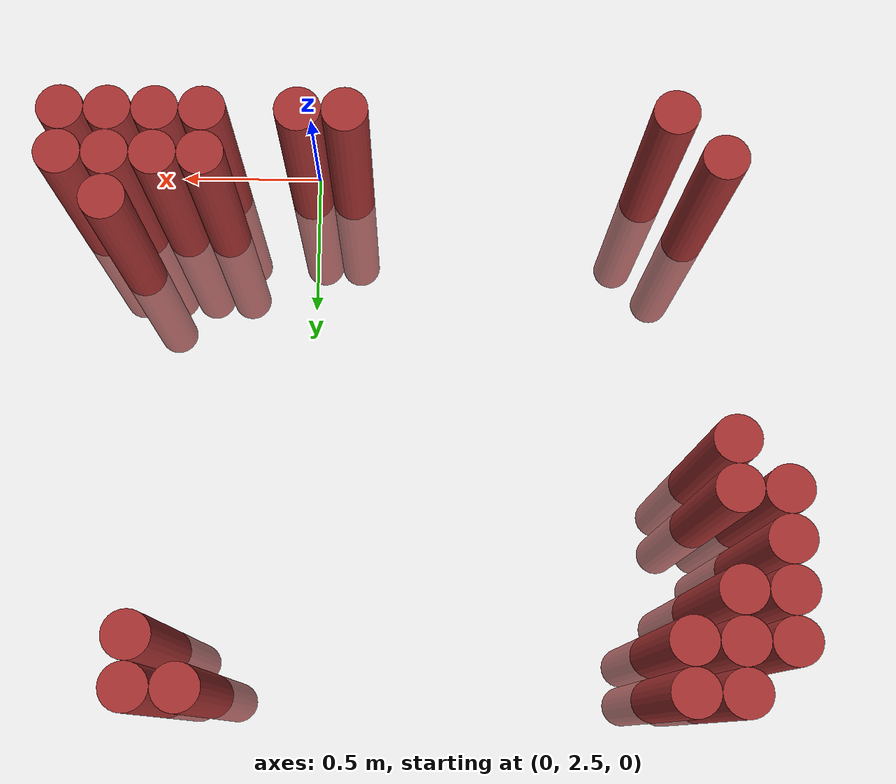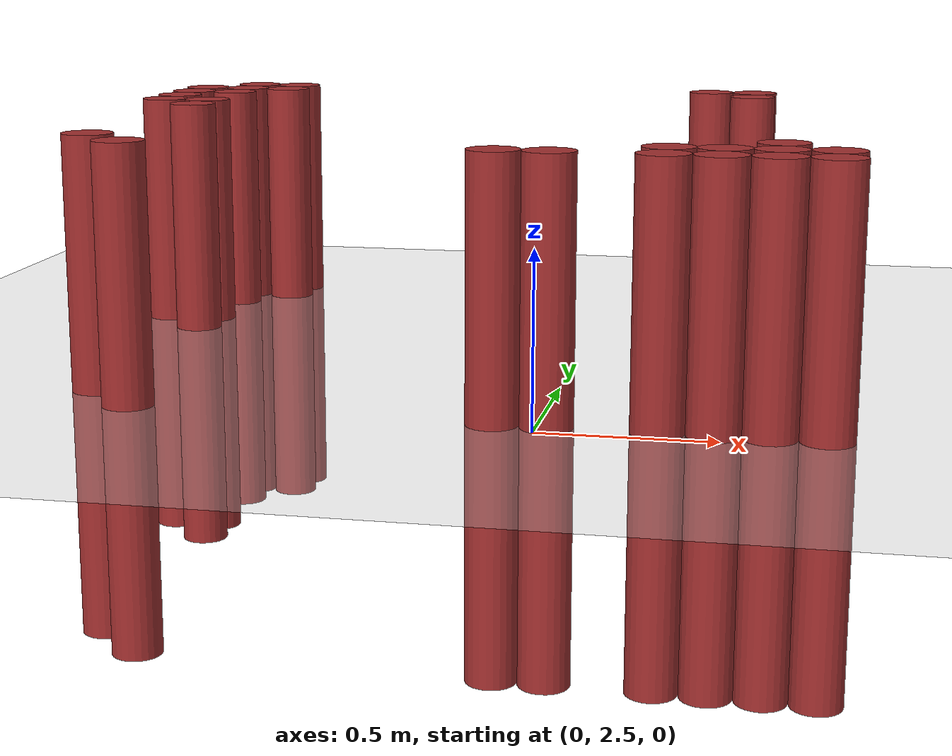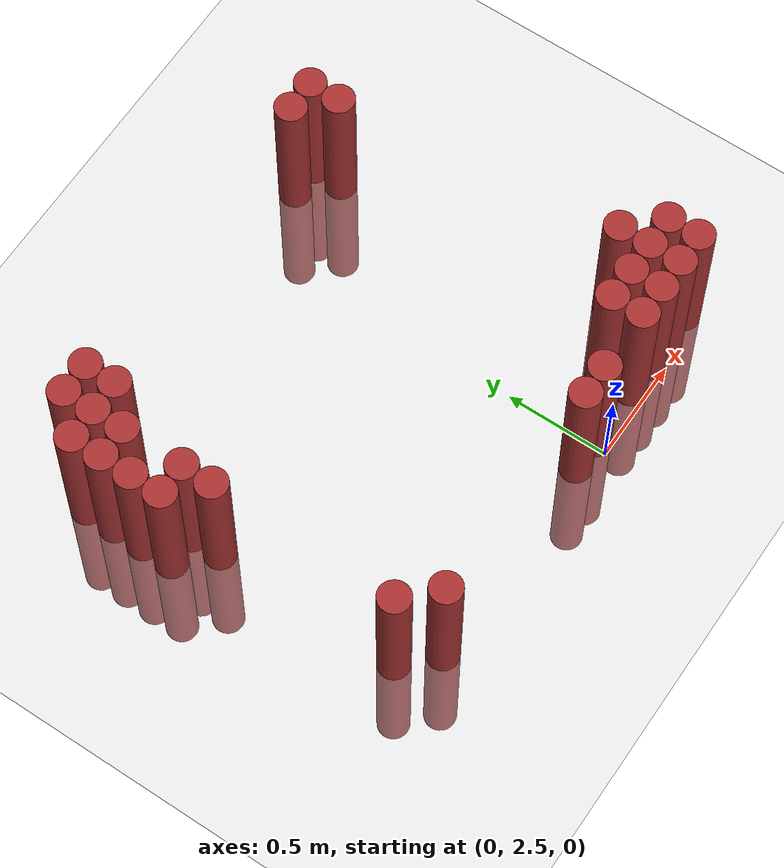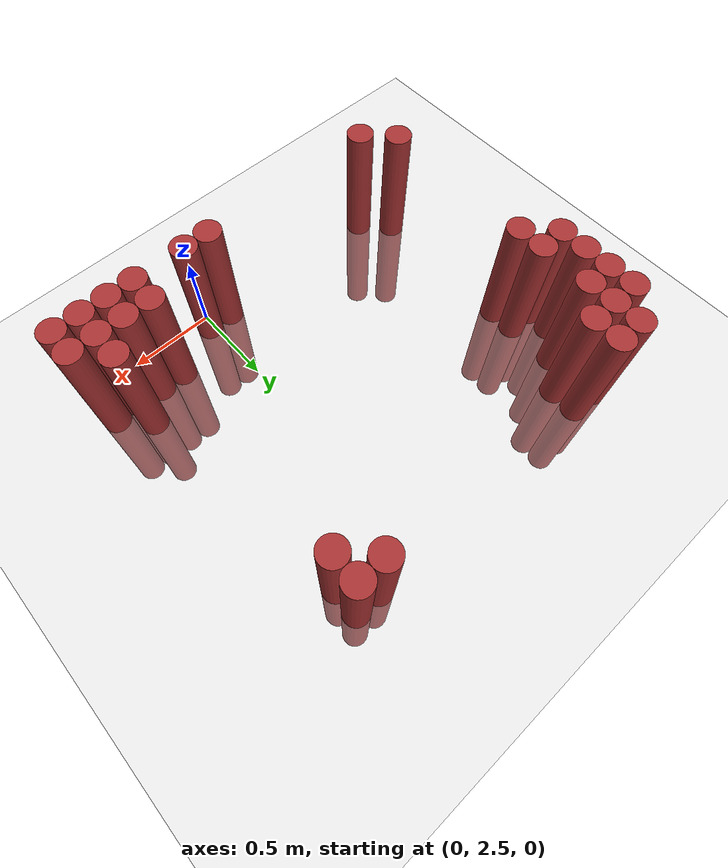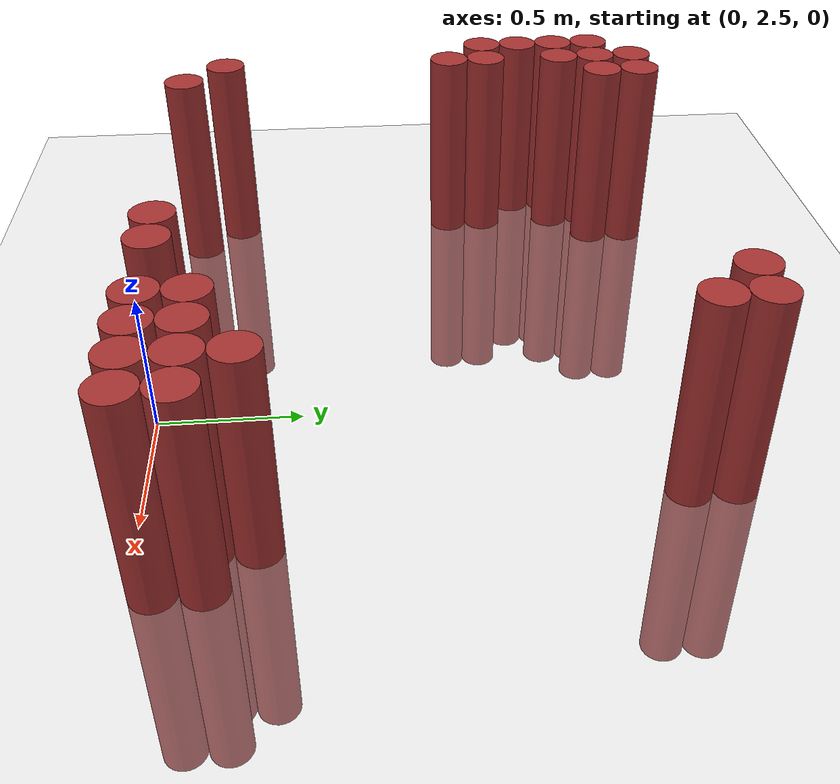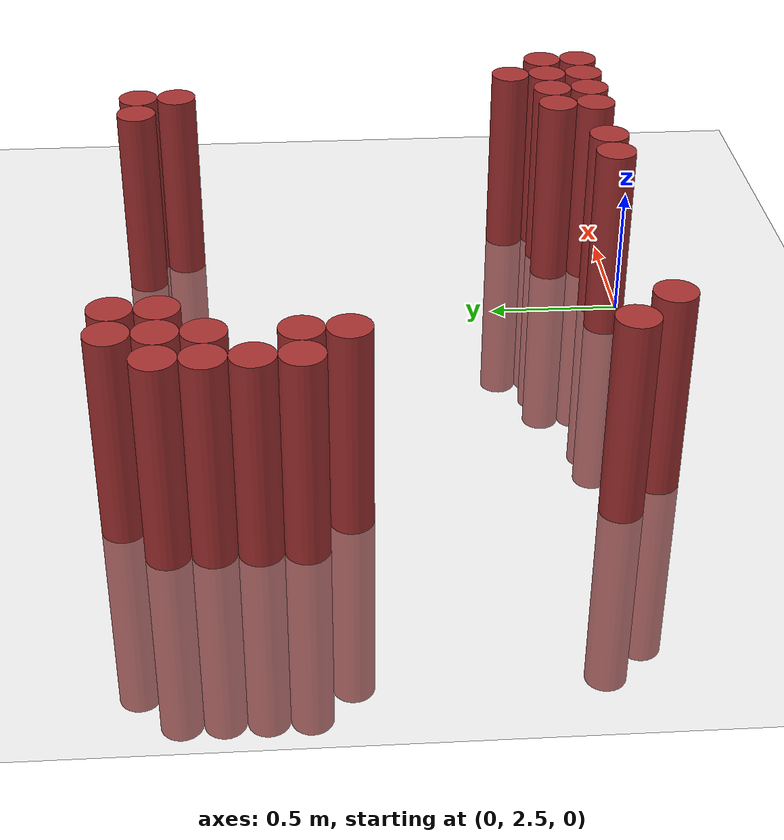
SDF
<sdf version="1.6">
 <world name="default">
  <model name="ground_plane">
   <static>1</static>
   <link name="link">
    <collision name="collision">
     <geometry><plane><normal>0 0 1</normal><size>100 100</size></plane></geometry>
     <surface><friction><ode><mu>100</mu><mu2>50</mu2></ode></friction></surface>
    </collision>
    <visual name="visual">
     <cast_shadows>0</cast_shadows>
     <geometry><plane><normal>0 0 1</normal><size>100 100</size></plane></geometry>
     <material>
      <script><uri>file://media/materials/scripts/gazebo.material</uri><name>Gazebo/Grey</name></script>
     </material>
    </visual>
   </link>
  </model>
  <model name="unit_cylinder_152">
   <static>1</static>
   <pose>-1.475000 3.775000 0.000000 0.000000 0.000000 0.000000</pose>
   <link name="link">
    <inertial>
     <mass>1</mass>
     <inertia><ixx>0.145833</ixx><ixy>0</ixy><ixz>0</ixz><iyy>0.145833</iyy><iyz>0</iyz><izz>0.125</izz></inertia>
    </inertial>
    <collision name="collision">
     <geometry><cylinder><radius>0.075000</radius><length>1.5</length></cylinder></geometry>
    </collision>
    <visual name="visual">
     <geometry><cylinder><radius>0.075000</radius><length>1.5</length></cylinder></geometry>
     <material>
      <ambient>0.648000 0.192000 0.192000 1</ambient>
      <diffuse>0.648000 0.192000 0.192000 1</diffuse>
     </material>
     <material>
      <script><name>Gazebo/Grey</name><uri>file://media/materials/scripts/gazebo.material</uri></script>
     </material>
    </visual>
   </link>
  </model>
  <model name="unit_cylinder_153">
   <static>1</static>
   <pose>-1.475000 3.925000 0.000000 0.000000 0.000000 0.000000</pose>
   <link name="link">
    <inertial>
     <mass>1</mass>
     <inertia><ixx>0.145833</ixx><ixy>0</ixy><ixz>0</ixz><iyy>0.145833</iyy><iyz>0</iyz><izz>0.125</izz></inertia>
    </inertial>
    <collision name="collision">
     <geometry><cylinder><radius>0.075000</radius><length>1.5</length></cylinder></geometry>
    </collision>
    <visual name="visual">
     <geometry><cylinder><radius>0.075000</radius><length>1.5</length></cylinder></geometry>
     <material>
      <ambient>0.648000 0.192000 0.192000 1</ambient>
      <diffuse>0.648000 0.192000 0.192000 1</diffuse>
     </material>
     <material>
      <script><name>Gazebo/Grey</name><uri>file://media/materials/scripts/gazebo.material</uri></script>
     </material>
    </visual>
   </link>
  </model>
  <model name="unit_cylinder_154">
   <static>1</static>
   <pose>-1.475000 4.075000 0.000000 0.000000 0.000000 0.000000</pose>
   <link name="link">
    <inertial>
     <mass>1</mass>
     <inertia><ixx>0.145833</ixx><ixy>0</ixy><ixz>0</ixz><iyy>0.145833</iyy><iyz>0</iyz><izz>0.125</izz></inertia>
    </inertial>
    <collision name="collision">
     <geometry><cylinder><radius>0.075000</radius><length>1.5</length></cylinder></geometry>
    </collision>
    <visual name="visual">
     <geometry><cylinder><radius>0.075000</radius><length>1.5</length></cylinder></geometry>
     <material>
      <ambient>0.648000 0.192000 0.192000 1</ambient>
      <diffuse>0.648000 0.192000 0.192000 1</diffuse>
     </material>
     <material>
      <script><name>Gazebo/Grey</name><uri>file://media/materials/scripts/gazebo.material</uri></script>
     </material>
    </visual>
   </link>
  </model>
  <model name="unit_cylinder_155">
   <static>1</static>
   <pose>-1.475000 4.225000 0.000000 0.000000 0.000000 0.000000</pose>
   <link name="link">
    <inertial>
     <mass>1</mass>
     <inertia><ixx>0.145833</ixx><ixy>0</ixy><ixz>0</ixz><iyy>0.145833</iyy><iyz>0</iyz><izz>0.125</izz></inertia>
    </inertial>
    <collision name="collision">
     <geometry><cylinder><radius>0.075000</radius><length>1.5</length></cylinder></geometry>
    </collision>
    <visual name="visual">
     <geometry><cylinder><radius>0.075000</radius><length>1.5</length></cylinder></geometry>
     <material>
      <ambient>0.648000 0.192000 0.192000 1</ambient>
      <diffuse>0.648000 0.192000 0.192000 1</diffuse>
     </material>
     <material>
      <script><name>Gazebo/Grey</name><uri>file://media/materials/scripts/gazebo.material</uri></script>
     </material>
    </visual>
   </link>
  </model>
  <model name="unit_cylinder_158">
   <static>1</static>
   <pose>-1.325000 2.725000 0.000000 0.000000 0.000000 0.000000</pose>
   <link name="link">
    <inertial>
     <mass>1</mass>
     <inertia><ixx>0.145833</ixx><ixy>0</ixy><ixz>0</ixz><iyy>0.145833</iyy><iyz>0</iyz><izz>0.125</izz></inertia>
    </inertial>
    <collision name="collision">
     <geometry><cylinder><radius>0.075000</radius><length>1.5</length></cylinder></geometry>
    </collision>
    <visual name="visual">
     <geometry><cylinder><radius>0.075000</radius><length>1.5</length></cylinder></geometry>
     <material>
      <ambient>0.648000 0.192000 0.192000 1</ambient>
      <diffuse>0.648000 0.192000 0.192000 1</diffuse>
     </material>
     <material>
      <script><name>Gazebo/Grey</name><uri>file://media/materials/scripts/gazebo.material</uri></script>
     </material>
    </visual>
   </link>
  </model>
  <model name="unit_cylinder_159">
   <static>1</static>
   <pose>-1.325000 3.625000 0.000000 0.000000 0.000000 0.000000</pose>
   <link name="link">
    <inertial>
     <mass>1</mass>
     <inertia><ixx>0.145833</ixx><ixy>0</ixy><ixz>0</ixz><iyy>0.145833</iyy><iyz>0</iyz><izz>0.125</izz></inertia>
    </inertial>
    <collision name="collision">
     <geometry><cylinder><radius>0.075000</radius><length>1.5</length></cylinder></geometry>
    </collision>
    <visual name="visual">
     <geometry><cylinder><radius>0.075000</radius><length>1.5</length></cylinder></geometry>
     <material>
      <ambient>0.648000 0.192000 0.192000 1</ambient>
      <diffuse>0.648000 0.192000 0.192000 1</diffuse>
     </material>
     <material>
      <script><name>Gazebo/Grey</name><uri>file://media/materials/scripts/gazebo.material</uri></script>
     </material>
    </visual>
   </link>
  </model>
  <model name="unit_cylinder_160">
   <static>1</static>
   <pose>-1.325000 3.775000 0.000000 0.000000 0.000000 0.000000</pose>
   <link name="link">
    <inertial>
     <mass>1</mass>
     <inertia><ixx>0.145833</ixx><ixy>0</ixy><ixz>0</ixz><iyy>0.145833</iyy><iyz>0</iyz><izz>0.125</izz></inertia>
    </inertial>
    <collision name="collision">
     <geometry><cylinder><radius>0.075000</radius><length>1.5</length></cylinder></geometry>
    </collision>
    <visual name="visual">
     <geometry><cylinder><radius>0.075000</radius><length>1.5</length></cylinder></geometry>
     <material>
      <ambient>0.648000 0.192000 0.192000 1</ambient>
      <diffuse>0.648000 0.192000 0.192000 1</diffuse>
     </material>
     <material>
      <script><name>Gazebo/Grey</name><uri>file://media/materials/scripts/gazebo.material</uri></script>
     </material>
    </visual>
   </link>
  </model>
  <model name="unit_cylinder_161">
   <static>1</static>
   <pose>-1.325000 4.075000 0.000000 0.000000 0.000000 0.000000</pose>
   <link name="link">
    <inertial>
     <mass>1</mass>
     <inertia><ixx>0.145833</ixx><ixy>0</ixy><ixz>0</ixz><iyy>0.145833</iyy><iyz>0</iyz><izz>0.125</izz></inertia>
    </inertial>
    <collision name="collision">
     <geometry><cylinder><radius>0.075000</radius><length>1.5</length></cylinder></geometry>
    </collision>
    <visual name="visual">
     <geometry><cylinder><radius>0.075000</radius><length>1.5</length></cylinder></geometry>
     <material>
      <ambient>0.648000 0.192000 0.192000 1</ambient>
      <diffuse>0.648000 0.192000 0.192000 1</diffuse>
     </material>
     <material>
      <script><name>Gazebo/Grey</name><uri>file://media/materials/scripts/gazebo.material</uri></script>
     </material>
    </visual>
   </link>
  </model>
  <model name="unit_cylinder_162">
   <static>1</static>
   <pose>-1.325000 4.225000 0.000000 0.000000 0.000000 0.000000</pose>
   <link name="link">
    <inertial>
     <mass>1</mass>
     <inertia><ixx>0.145833</ixx><ixy>0</ixy><ixz>0</ixz><iyy>0.145833</iyy><iyz>0</iyz><izz>0.125</izz></inertia>
    </inertial>
    <collision name="collision">
     <geometry><cylinder><radius>0.075000</radius><length>1.5</length></cylinder></geometry>
    </collision>
    <visual name="visual">
     <geometry><cylinder><radius>0.075000</radius><length>1.5</length></cylinder></geometry>
     <material>
      <ambient>0.648000 0.192000 0.192000 1</ambient>
      <diffuse>0.648000 0.192000 0.192000 1</diffuse>
     </material>
     <material>
      <script><name>Gazebo/Grey</name><uri>file://media/materials/scripts/gazebo.material</uri></script>
     </material>
    </visual>
   </link>
  </model>
  <model name="unit_cylinder_163">
   <static>1</static>
   <pose>-1.325000 4.375000 0.000000 0.000000 0.000000 0.000000</pose>
   <link name="link">
    <inertial>
     <mass>1</mass>
     <inertia><ixx>0.145833</ixx><ixy>0</ixy><ixz>0</ixz><iyy>0.145833</iyy><iyz>0</iyz><izz>0.125</izz></inertia>
    </inertial>
    <collision name="collision">
     <geometry><cylinder><radius>0.075000</radius><length>1.5</length></cylinder></geometry>
    </collision>
    <visual name="visual">
     <geometry><cylinder><radius>0.075000</radius><length>1.5</length></cylinder></geometry>
     <material>
      <ambient>0.648000 0.192000 0.192000 1</ambient>
      <diffuse>0.648000 0.192000 0.192000 1</diffuse>
     </material>
     <material>
      <script><name>Gazebo/Grey</name><uri>file://media/materials/scripts/gazebo.material</uri></script>
     </material>
    </visual>
   </link>
  </model>
  <model name="unit_cylinder_168">
   <static>1</static>
   <pose>-1.175000 2.575000 0.000000 0.000000 0.000000 0.000000</pose>
   <link name="link">
    <inertial>
     <mass>1</mass>
     <inertia><ixx>0.145833</ixx><ixy>0</ixy><ixz>0</ixz><iyy>0.145833</iyy><iyz>0</iyz><izz>0.125</izz></inertia>
    </inertial>
    <collision name="collision">
     <geometry><cylinder><radius>0.075000</radius><length>1.5</length></cylinder></geometry>
    </collision>
    <visual name="visual">
     <geometry><cylinder><radius>0.075000</radius><length>1.5</length></cylinder></geometry>
     <material>
      <ambient>0.648000 0.192000 0.192000 1</ambient>
      <diffuse>0.648000 0.192000 0.192000 1</diffuse>
     </material>
     <material>
      <script><name>Gazebo/Grey</name><uri>file://media/materials/scripts/gazebo.material</uri></script>
     </material>
    </visual>
   </link>
  </model>
  <model name="unit_cylinder_169">
   <static>1</static>
   <pose>-1.175000 4.225000 0.000000 0.000000 0.000000 0.000000</pose>
   <link name="link">
    <inertial>
     <mass>1</mass>
     <inertia><ixx>0.145833</ixx><ixy>0</ixy><ixz>0</ixz><iyy>0.145833</iyy><iyz>0</iyz><izz>0.125</izz></inertia>
    </inertial>
    <collision name="collision">
     <geometry><cylinder><radius>0.075000</radius><length>1.5</length></cylinder></geometry>
    </collision>
    <visual name="visual">
     <geometry><cylinder><radius>0.075000</radius><length>1.5</length></cylinder></geometry>
     <material>
      <ambient>0.648000 0.192000 0.192000 1</ambient>
      <diffuse>0.648000 0.192000 0.192000 1</diffuse>
     </material>
     <material>
      <script><name>Gazebo/Grey</name><uri>file://media/materials/scripts/gazebo.material</uri></script>
     </material>
    </visual>
   </link>
  </model>
  <model name="unit_cylinder_170">
   <static>1</static>
   <pose>-1.175000 4.375000 0.000000 0.000000 0.000000 0.000000</pose>
   <link name="link">
    <inertial>
     <mass>1</mass>
     <inertia><ixx>0.145833</ixx><ixy>0</ixy><ixz>0</ixz><iyy>0.145833</iyy><iyz>0</iyz><izz>0.125</izz></inertia>
    </inertial>
    <collision name="collision">
     <geometry><cylinder><radius>0.075000</radius><length>1.5</length></cylinder></geometry>
    </collision>
    <visual name="visual">
     <geometry><cylinder><radius>0.075000</radius><length>1.5</length></cylinder></geometry>
     <material>
      <ambient>0.648000 0.192000 0.192000 1</ambient>
      <diffuse>0.648000 0.192000 0.192000 1</diffuse>
     </material>
     <material>
      <script><name>Gazebo/Grey</name><uri>file://media/materials/scripts/gazebo.material</uri></script>
     </material>
    </visual>
   </link>
  </model>
  <model name="unit_cylinder_200">
   <static>1</static>
   <pose>-0.125000 2.575000 0.000000 0.000000 0.000000 0.000000</pose>
   <link name="link">
    <inertial>
     <mass>1</mass>
     <inertia><ixx>0.145833</ixx><ixy>0</ixy><ixz>0</ixz><iyy>0.145833</iyy><iyz>0</iyz><izz>0.125</izz></inertia>
    </inertial>
    <collision name="collision">
     <geometry><cylinder><radius>0.075000</radius><length>1.5</length></cylinder></geometry>
    </collision>
    <visual name="visual">
     <geometry><cylinder><radius>0.075000</radius><length>1.5</length></cylinder></geometry>
     <material>
      <ambient>0.648000 0.192000 0.192000 1</ambient>
      <diffuse>0.648000 0.192000 0.192000 1</diffuse>
     </material>
     <material>
      <script><name>Gazebo/Grey</name><uri>file://media/materials/scripts/gazebo.material</uri></script>
     </material>
    </visual>
   </link>
  </model>
  <model name="unit_cylinder_202">
   <static>1</static>
   <pose>0.025000 2.575000 0.000000 0.000000 0.000000 0.000000</pose>
   <link name="link">
    <inertial>
     <mass>1</mass>
     <inertia><ixx>0.145833</ixx><ixy>0</ixy><ixz>0</ixz><iyy>0.145833</iyy><iyz>0</iyz><izz>0.125</izz></inertia>
    </inertial>
    <collision name="collision">
     <geometry><cylinder><radius>0.075000</radius><length>1.5</length></cylinder></geometry>
    </collision>
    <visual name="visual">
     <geometry><cylinder><radius>0.075000</radius><length>1.5</length></cylinder></geometry>
     <material>
      <ambient>0.648000 0.192000 0.192000 1</ambient>
      <diffuse>0.648000 0.192000 0.192000 1</diffuse>
     </material>
     <material>
      <script><name>Gazebo/Grey</name><uri>file://media/materials/scripts/gazebo.material</uri></script>
     </material>
    </visual>
   </link>
  </model>
  <model name="unit_cylinder_205">
   <static>1</static>
   <pose>0.325000 2.575000 0.000000 0.000000 0.000000 0.000000</pose>
   <link name="link">
    <inertial>
     <mass>1</mass>
     <inertia><ixx>0.145833</ixx><ixy>0</ixy><ixz>0</ixz><iyy>0.145833</iyy><iyz>0</iyz><izz>0.125</izz></inertia>
    </inertial>
    <collision name="collision">
     <geometry><cylinder><radius>0.075000</radius><length>1.5</length></cylinder></geometry>
    </collision>
    <visual name="visual">
     <geometry><cylinder><radius>0.075000</radius><length>1.5</length></cylinder></geometry>
     <material>
      <ambient>0.648000 0.192000 0.192000 1</ambient>
      <diffuse>0.648000 0.192000 0.192000 1</diffuse>
     </material>
     <material>
      <script><name>Gazebo/Grey</name><uri>file://media/materials/scripts/gazebo.material</uri></script>
     </material>
    </visual>
   </link>
  </model>
  <model name="unit_cylinder_206">
   <static>1</static>
   <pose>0.325000 2.725000 0.000000 0.000000 0.000000 0.000000</pose>
   <link name="link">
    <inertial>
     <mass>1</mass>
     <inertia><ixx>0.145833</ixx><ixy>0</ixy><ixz>0</ixz><iyy>0.145833</iyy><iyz>0</iyz><izz>0.125</izz></inertia>
    </inertial>
    <collision name="collision">
     <geometry><cylinder><radius>0.075000</radius><length>1.5</length></cylinder></geometry>
    </collision>
    <visual name="visual">
     <geometry><cylinder><radius>0.075000</radius><length>1.5</length></cylinder></geometry>
     <material>
      <ambient>0.648000 0.192000 0.192000 1</ambient>
      <diffuse>0.648000 0.192000 0.192000 1</diffuse>
     </material>
     <material>
      <script><name>Gazebo/Grey</name><uri>file://media/materials/scripts/gazebo.material</uri></script>
     </material>
    </visual>
   </link>
  </model>
  <model name="unit_cylinder_207">
   <static>1</static>
   <pose>0.325000 4.375000 0.000000 0.000000 0.000000 0.000000</pose>
   <link name="link">
    <inertial>
     <mass>1</mass>
     <inertia><ixx>0.145833</ixx><ixy>0</ixy><ixz>0</ixz><iyy>0.145833</iyy><iyz>0</iyz><izz>0.125</izz></inertia>
    </inertial>
    <collision name="collision">
     <geometry><cylinder><radius>0.075000</radius><length>1.5</length></cylinder></geometry>
    </collision>
    <visual name="visual">
     <geometry><cylinder><radius>0.075000</radius><length>1.5</length></cylinder></geometry>
     <material>
      <ambient>0.648000 0.192000 0.192000 1</ambient>
      <diffuse>0.648000 0.192000 0.192000 1</diffuse>
     </material>
     <material>
      <script><name>Gazebo/Grey</name><uri>file://media/materials/scripts/gazebo.material</uri></script>
     </material>
    </visual>
   </link>
  </model>
  <model name="unit_cylinder_212">
   <static>1</static>
   <pose>0.475000 2.575000 0.000000 0.000000 0.000000 0.000000</pose>
   <link name="link">
    <inertial>
     <mass>1</mass>
     <inertia><ixx>0.145833</ixx><ixy>0</ixy><ixz>0</ixz><iyy>0.145833</iyy><iyz>0</iyz><izz>0.125</izz></inertia>
    </inertial>
    <collision name="collision">
     <geometry><cylinder><radius>0.075000</radius><length>1.5</length></cylinder></geometry>
    </collision>
    <visual name="visual">
     <geometry><cylinder><radius>0.075000</radius><length>1.5</length></cylinder></geometry>
     <material>
      <ambient>0.648000 0.192000 0.192000 1</ambient>
      <diffuse>0.648000 0.192000 0.192000 1</diffuse>
     </material>
     <material>
      <script><name>Gazebo/Grey</name><uri>file://media/materials/scripts/gazebo.material</uri></script>
     </material>
    </visual>
   </link>
  </model>
  <model name="unit_cylinder_213">
   <static>1</static>
   <pose>0.475000 2.725000 0.000000 0.000000 0.000000 0.000000</pose>
   <link name="link">
    <inertial>
     <mass>1</mass>
     <inertia><ixx>0.145833</ixx><ixy>0</ixy><ixz>0</ixz><iyy>0.145833</iyy><iyz>0</iyz><izz>0.125</izz></inertia>
    </inertial>
    <collision name="collision">
     <geometry><cylinder><radius>0.075000</radius><length>1.5</length></cylinder></geometry>
    </collision>
    <visual name="visual">
     <geometry><cylinder><radius>0.075000</radius><length>1.5</length></cylinder></geometry>
     <material>
      <ambient>0.648000 0.192000 0.192000 1</ambient>
      <diffuse>0.648000 0.192000 0.192000 1</diffuse>
     </material>
     <material>
      <script><name>Gazebo/Grey</name><uri>file://media/materials/scripts/gazebo.material</uri></script>
     </material>
    </visual>
   </link>
  </model>
  <model name="unit_cylinder_214">
   <static>1</static>
   <pose>0.475000 4.225000 0.000000 0.000000 0.000000 0.000000</pose>
   <link name="link">
    <inertial>
     <mass>1</mass>
     <inertia><ixx>0.145833</ixx><ixy>0</ixy><ixz>0</ixz><iyy>0.145833</iyy><iyz>0</iyz><izz>0.125</izz></inertia>
    </inertial>
    <collision name="collision">
     <geometry><cylinder><radius>0.075000</radius><length>1.5</length></cylinder></geometry>
    </collision>
    <visual name="visual">
     <geometry><cylinder><radius>0.075000</radius><length>1.5</length></cylinder></geometry>
     <material>
      <ambient>0.648000 0.192000 0.192000 1</ambient>
      <diffuse>0.648000 0.192000 0.192000 1</diffuse>
     </material>
     <material>
      <script><name>Gazebo/Grey</name><uri>file://media/materials/scripts/gazebo.material</uri></script>
     </material>
    </visual>
   </link>
  </model>
  <model name="unit_cylinder_215">
   <static>1</static>
   <pose>0.475000 4.375000 0.000000 0.000000 0.000000 0.000000</pose>
   <link name="link">
    <inertial>
     <mass>1</mass>
     <inertia><ixx>0.145833</ixx><ixy>0</ixy><ixz>0</ixz><iyy>0.145833</iyy><iyz>0</iyz><izz>0.125</izz></inertia>
    </inertial>
    <collision name="collision">
     <geometry><cylinder><radius>0.075000</radius><length>1.5</length></cylinder></geometry>
    </collision>
    <visual name="visual">
     <geometry><cylinder><radius>0.075000</radius><length>1.5</length></cylinder></geometry>
     <material>
      <ambient>0.648000 0.192000 0.192000 1</ambient>
      <diffuse>0.648000 0.192000 0.192000 1</diffuse>
     </material>
     <material>
      <script><name>Gazebo/Grey</name><uri>file://media/materials/scripts/gazebo.material</uri></script>
     </material>
    </visual>
   </link>
  </model>
  <model name="unit_cylinder_218">
   <static>1</static>
   <pose>0.625000 2.575000 0.000000 0.000000 0.000000 0.000000</pose>
   <link name="link">
    <inertial>
     <mass>1</mass>
     <inertia><ixx>0.145833</ixx><ixy>0</ixy><ixz>0</ixz><iyy>0.145833</iyy><iyz>0</iyz><izz>0.125</izz></inertia>
    </inertial>
    <collision name="collision">
     <geometry><cylinder><radius>0.075000</radius><length>1.5</length></cylinder></geometry>
    </collision>
    <visual name="visual">
     <geometry><cylinder><radius>0.075000</radius><length>1.5</length></cylinder></geometry>
     <material>
      <ambient>0.648000 0.192000 0.192000 1</ambient>
      <diffuse>0.648000 0.192000 0.192000 1</diffuse>
     </material>
     <material>
      <script><name>Gazebo/Grey</name><uri>file://media/materials/scripts/gazebo.material</uri></script>
     </material>
    </visual>
   </link>
  </model>
  <model name="unit_cylinder_219">
   <static>1</static>
   <pose>0.625000 2.725000 0.000000 0.000000 0.000000 0.000000</pose>
   <link name="link">
    <inertial>
     <mass>1</mass>
     <inertia><ixx>0.145833</ixx><ixy>0</ixy><ixz>0</ixz><iyy>0.145833</iyy><iyz>0</iyz><izz>0.125</izz></inertia>
    </inertial>
    <collision name="collision">
     <geometry><cylinder><radius>0.075000</radius><length>1.5</length></cylinder></geometry>
    </collision>
    <visual name="visual">
     <geometry><cylinder><radius>0.075000</radius><length>1.5</length></cylinder></geometry>
     <material>
      <ambient>0.648000 0.192000 0.192000 1</ambient>
      <diffuse>0.648000 0.192000 0.192000 1</diffuse>
     </material>
     <material>
      <script><name>Gazebo/Grey</name><uri>file://media/materials/scripts/gazebo.material</uri></script>
     </material>
    </visual>
   </link>
  </model>
  <model name="unit_cylinder_220">
   <static>1</static>
   <pose>0.625000 2.875000 0.000000 0.000000 0.000000 0.000000</pose>
   <link name="link">
    <inertial>
     <mass>1</mass>
     <inertia><ixx>0.145833</ixx><ixy>0</ixy><ixz>0</ixz><iyy>0.145833</iyy><iyz>0</iyz><izz>0.125</izz></inertia>
    </inertial>
    <collision name="collision">
     <geometry><cylinder><radius>0.075000</radius><length>1.5</length></cylinder></geometry>
    </collision>
    <visual name="visual">
     <geometry><cylinder><radius>0.075000</radius><length>1.5</length></cylinder></geometry>
     <material>
      <ambient>0.648000 0.192000 0.192000 1</ambient>
      <diffuse>0.648000 0.192000 0.192000 1</diffuse>
     </material>
     <material>
      <script><name>Gazebo/Grey</name><uri>file://media/materials/scripts/gazebo.material</uri></script>
     </material>
    </visual>
   </link>
  </model>
  <model name="unit_cylinder_221">
   <static>1</static>
   <pose>0.775000 2.575000 0.000000 0.000000 0.000000 0.000000</pose>
   <link name="link">
    <inertial>
     <mass>1</mass>
     <inertia><ixx>0.145833</ixx><ixy>0</ixy><ixz>0</ixz><iyy>0.145833</iyy><iyz>0</iyz><izz>0.125</izz></inertia>
    </inertial>
    <collision name="collision">
     <geometry><cylinder><radius>0.075000</radius><length>1.5</length></cylinder></geometry>
    </collision>
    <visual name="visual">
     <geometry><cylinder><radius>0.075000</radius><length>1.5</length></cylinder></geometry>
     <material>
      <ambient>0.648000 0.192000 0.192000 1</ambient>
      <diffuse>0.648000 0.192000 0.192000 1</diffuse>
     </material>
     <material>
      <script><name>Gazebo/Grey</name><uri>file://media/materials/scripts/gazebo.material</uri></script>
     </material>
    </visual>
   </link>
  </model>
  <model name="unit_cylinder_222">
   <static>1</static>
   <pose>0.775000 2.725000 0.000000 0.000000 0.000000 0.000000</pose>
   <link name="link">
    <inertial>
     <mass>1</mass>
     <inertia><ixx>0.145833</ixx><ixy>0</ixy><ixz>0</ixz><iyy>0.145833</iyy><iyz>0</iyz><izz>0.125</izz></inertia>
    </inertial>
    <collision name="collision">
     <geometry><cylinder><radius>0.075000</radius><length>1.5</length></cylinder></geometry>
    </collision>
    <visual name="visual">
     <geometry><cylinder><radius>0.075000</radius><length>1.5</length></cylinder></geometry>
     <material>
      <ambient>0.648000 0.192000 0.192000 1</ambient>
      <diffuse>0.648000 0.192000 0.192000 1</diffuse>
     </material>
     <material>
      <script><name>Gazebo/Grey</name><uri>file://media/materials/scripts/gazebo.material</uri></script>
     </material>
    </visual>
   </link>
  </model>
 </world>
</sdf>
